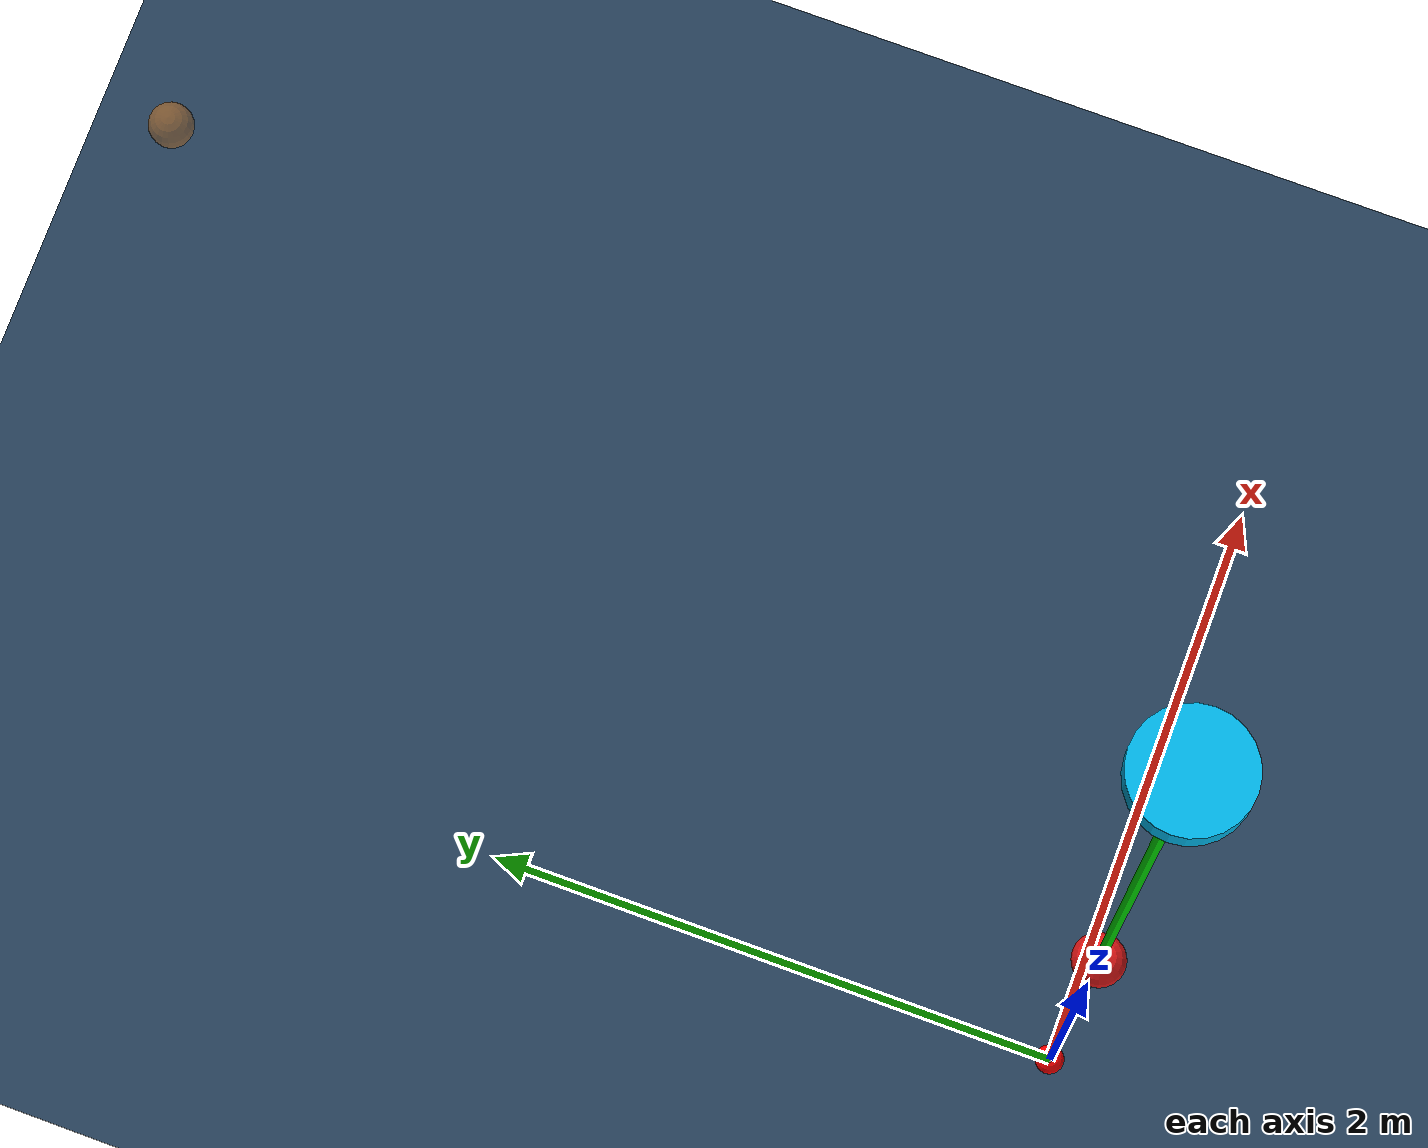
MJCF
<mujoco model="section_3_1_2_interactive_system">
    <option gravity="0 0 -9.81" timestep="0.002"/>
    <asset>
        <texture name="grid" type="2d" builtin="checker" rgb1=".1 .2 .3" rgb2=".2 .3 .4" width="300" height="300"/>
        <material name="grid_mat" texture="grid" texrepeat="10 10"/>
    </asset>
    <worldbody>
        <light pos="0 0 10" dir="0 0 -1"/>
        <geom type="plane" size="10 10 0.1" material="grid_mat"/>
        <body name="target_marker" mocap="true" pos="1 3 4">
            <geom type="sphere" size="0.06" rgba="1 0.5 0 0.4" contype="0" conaffinity="0"/>
        </body>
        <site name="ground_anchor" pos="0 0 0" size="0.05" rgba="1 0 0 1"/>
        <body name="payload" pos="0 0 2.5">
            <freejoint name="payload_joint"/>
            <geom type="sphere" size="0.08" rgba="0.9 0.1 0.1 1" mass="1.0"/>
            <site name="payload_top" pos="0 0 0" size="0.01" rgba="1 1 1 1"/>
            <site name="payload_bottom" pos="0 0 0" size="0.01" rgba="1 1 1 1"/>
        </body>
        <body name="drone" pos="0 0 5.5">
            <freejoint name="drone_joint"/>
            <inertial pos="0 0 0" mass="2.0" diaginertia="0.01 0.01 0.015"/>
            <geom name="drone_geom" type="cylinder" size="0.15 0.05"
                  rgba="0 0.7 0.9 1" mass="2.0"/>
            <site name="drone_attachment" pos="0 0 0" size="0.02" rgba="1 1 0 1"/>
        </body>
    </worldbody>
    <tendon>
        <spatial name="cable_2" limited="true" range="0 5.0" width="0.015" rgba="0.7 0.7 0.7 1">
            <site site="ground_anchor"/>
            <site site="payload_bottom"/>
        </spatial>
        <spatial name="cable_1" limited="true" range="0 4.0" width="0.015" rgba="0 0.8 0 1">
            <site site="payload_top"/>
            <site site="drone_attachment"/>
        </spatial>
    </tendon>

    <actuator>
      <motor name="thrust" site="drone_attachment" gear="0 0 1 0 0 0"/>
      <motor name="roll"   site="drone_attachment" gear="0 0 0 1 0 0"/>
      <motor name="pitch"  site="drone_attachment" gear="0 0 0 0 1 0"/>
      <motor name="yaw"    site="drone_attachment" gear="0 0 0 0 0 1"/>
      <position name="cable_2_winch" tendon="cable_2" kp="2000" kv="150" ctrlrange="0 10.0"/>
    </actuator>
</mujoco>
